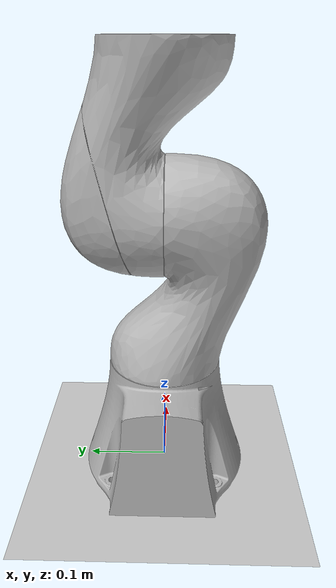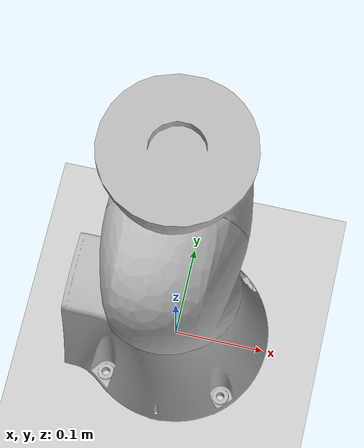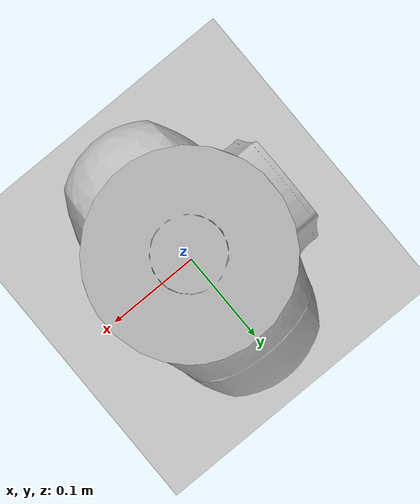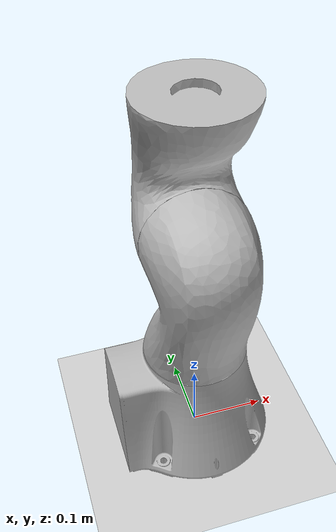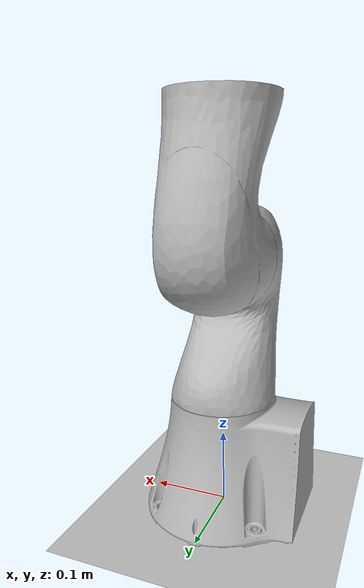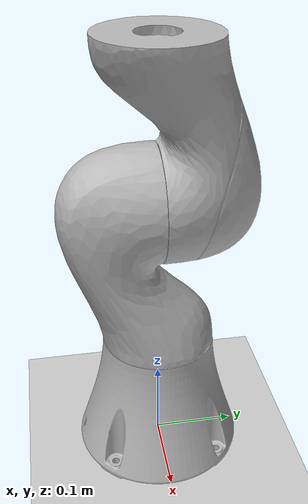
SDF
<sdf version="1.7">
 <world name="default">
  <light name="sun" type="directional">
   <pose>0 0 10 0 -0 0</pose>
   <diffuse>0.8 0.8 0.8 1</diffuse>
   <specular>0.2 0.2 0.2 1</specular>
   <attenuation>
    <range>1000</range>
    <constant>0.9</constant>
    <linear>0.01</linear>
    <quadratic>0.001</quadratic>
   </attenuation>
   <direction>-0.5 0.1 -0.9</direction>
   <spot><inner_angle>0</inner_angle><outer_angle>0</outer_angle><falloff>0</falloff></spot>
  </light>
  <model name="ground_plane">
   <static>1</static>
   <link name="link">
    <collision name="collision">
     <geometry><plane><normal>0 0 1</normal><size>100 100</size></plane></geometry>
     <surface>
      <contact><collide_bitmask>65535</collide_bitmask></contact>
      <friction><ode><mu>100</mu><mu2>50</mu2></ode></friction>
     </surface>
    </collision>
    <visual name="visual">
     <cast_shadows>0</cast_shadows>
     <geometry><plane><normal>0 0 1</normal><size>100 100</size></plane></geometry>
     <material>
      <script><uri>file://media/materials/scripts/gazebo.material</uri><name>Gazebo/Grey</name></script>
     </material>
    </visual>
   </link>
  </model>
  <gravity>0 0 -9.8</gravity>
  <magnetic_field>6e-06 2.3e-05 -4.2e-05</magnetic_field>
  <atmosphere type="adiabatic"/>
  <physics type="ode">
   <max_step_size>0.001</max_step_size>
   <real_time_factor>1</real_time_factor>
   <real_time_update_rate>1000</real_time_update_rate>
  </physics>
  <scene><ambient>0.4 0.4 0.4 1</ambient><background>0.7 0.7 0.7 1</background><shadows>1</shadows></scene>
  <audio><device>default</device></audio>
  <spherical_coordinates>
   <surface_model>EARTH_WGS84</surface_model>
   <latitude_deg>0</latitude_deg>
   <longitude_deg>0</longitude_deg>
   <elevation>0</elevation>
   <heading_deg>0</heading_deg>
  </spherical_coordinates>
  <model name="bot">
   <joint name="world_iiwa_joint" type="fixed">
    <pose relative_to="__model__">0 0 0 0 -0 0</pose>
    <parent>world</parent>
    <child>iiwa_link_0</child>
   </joint>
   <link name="iiwa_link_0">
    <pose relative_to="world_iiwa_joint">0 0 0 0 -0 0</pose>
    <inertial>
     <pose>-0.1 0 0.07 0 -0 0</pose>
     <mass>5</mass>
     <inertia><ixx>0.05</ixx><ixy>0</ixy><ixz>0</ixz><iyy>0.06</iyy><iyz>0</iyz><izz>0.03</izz></inertia>
    </inertial>
    <collision name="iiwa_link_0_collision">
     <geometry>
      <mesh>
       <scale>1 1 1</scale>
       <uri>/home/aaditya/Intro-to-robotics/ass1/ros2_ws/install/simmulator/share/simmulator/meshes/iiwa7/collision/link_0.stl</uri>
      </mesh>
     </geometry>
    </collision>
    <visual name="iiwa_link_0_visual">
     <geometry>
      <mesh>
       <scale>1 1 1</scale>
       <uri>/home/aaditya/Intro-to-robotics/ass1/ros2_ws/install/simmulator/share/simmulator/meshes/iiwa7/visual/link_0.stl</uri>
      </mesh>
     </geometry>
    </visual>
   </link>
   <joint name="iiwa_joint_1" type="revolute">
    <pose relative_to="iiwa_link_0">0 0 0.15 0 -0 0</pose>
    <parent>iiwa_link_0</parent>
    <child>iiwa_link_1</child>
    <axis>
     <xyz>0 0 1</xyz>
     <limit><lower>-2.96706</lower><upper>2.96706</upper><effort>176</effort><velocity>1.71042</velocity></limit>
     <dynamics>
      <damping>0.5</damping>
      <friction>0</friction>
      <spring_reference>0</spring_reference>
      <spring_stiffness>0</spring_stiffness>
     </dynamics>
    </axis>
   </joint>
   <link name="iiwa_link_1">
    <pose relative_to="iiwa_joint_1">0 0 0 0 -0 0</pose>
    <inertial>
     <pose>0 -0.03 0.12 0 -0 0</pose>
     <mass>3.4525</mass>
     <inertia>
      <ixx>0.02183</ixx>
      <ixy>0</ixy>
      <ixz>0</ixz>
      <iyy>0.007703</iyy>
      <iyz>-0.003887</iyz>
      <izz>0.02083</izz>
     </inertia>
    </inertial>
    <collision name="iiwa_link_1_collision">
     <pose>0 0 0.0075 0 -0 0</pose>
     <geometry>
      <mesh>
       <scale>1 1 1</scale>
       <uri>/home/aaditya/Intro-to-robotics/ass1/ros2_ws/install/simmulator/share/simmulator/meshes/iiwa7/collision/link_1.stl</uri>
      </mesh>
     </geometry>
    </collision>
    <visual name="iiwa_link_1_visual">
     <pose>0 0 0.0075 0 -0 0</pose>
     <geometry>
      <mesh>
       <scale>1 1 1</scale>
       <uri>/home/aaditya/Intro-to-robotics/ass1/ros2_ws/install/simmulator/share/simmulator/meshes/iiwa7/visual/link_1.stl</uri>
      </mesh>
     </geometry>
    </visual>
   </link>
   <joint name="iiwa_joint_2" type="revolute">
    <pose relative_to="iiwa_link_1">0 0 0.19 1.5708 -0 3.14159</pose>
    <parent>iiwa_link_1</parent>
    <child>iiwa_link_2</child>
    <axis>
     <xyz>0 0 1</xyz>
     <limit><lower>-2.0944</lower><upper>2.0944</upper><effort>176</effort><velocity>1.71042</velocity></limit>
     <dynamics>
      <damping>0.5</damping>
      <friction>0</friction>
      <spring_reference>0</spring_reference>
      <spring_stiffness>0</spring_stiffness>
     </dynamics>
    </axis>
   </joint>
   <link name="iiwa_link_2">
    <pose relative_to="iiwa_joint_2">0 0 0 0 -0 0</pose>
    <inertial>
     <pose>0.0003 0.059 0.042 0 -0 0</pose>
     <mass>3.4821</mass>
     <inertia>
      <ixx>0.02076</ixx>
      <ixy>0</ixy>
      <ixz>-0.003626</ixz>
      <iyy>0.02179</iyy>
      <iyz>0</iyz>
      <izz>0.00779</izz>
     </inertia>
    </inertial>
    <collision name="iiwa_link_2_collision">
     <geometry>
      <mesh>
       <scale>1 1 1</scale>
       <uri>/home/aaditya/Intro-to-robotics/ass1/ros2_ws/install/simmulator/share/simmulator/meshes/iiwa7/collision/link_2.stl</uri>
      </mesh>
     </geometry>
    </collision>
    <visual name="iiwa_link_2_visual">
     <geometry>
      <mesh>
       <scale>1 1 1</scale>
       <uri>/home/aaditya/Intro-to-robotics/ass1/ros2_ws/install/simmulator/share/simmulator/meshes/iiwa7/visual/link_2.stl</uri>
      </mesh>
     </geometry>
    </visual>
   </link>
   <pose>0 0 0 0 -1e-06 0</pose>
  </model>
 </world>
</sdf>
